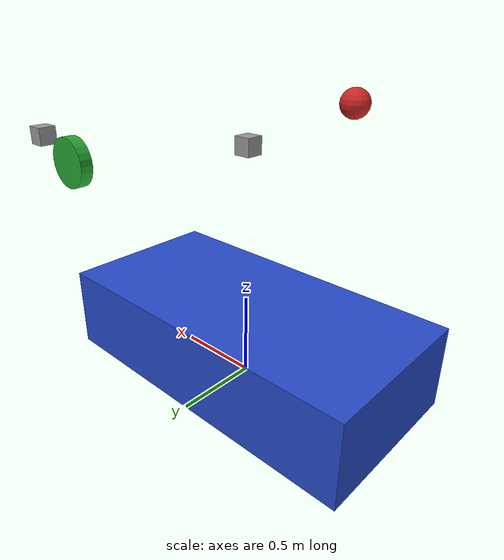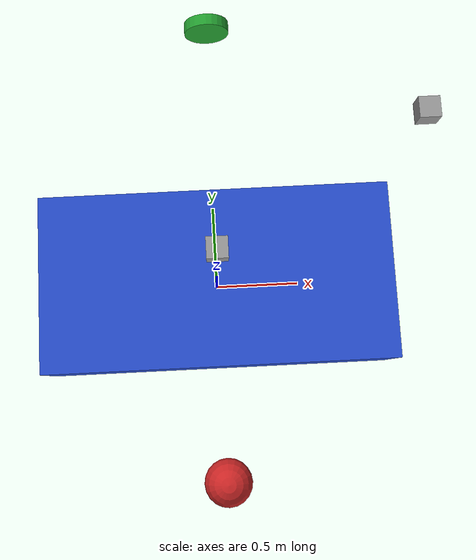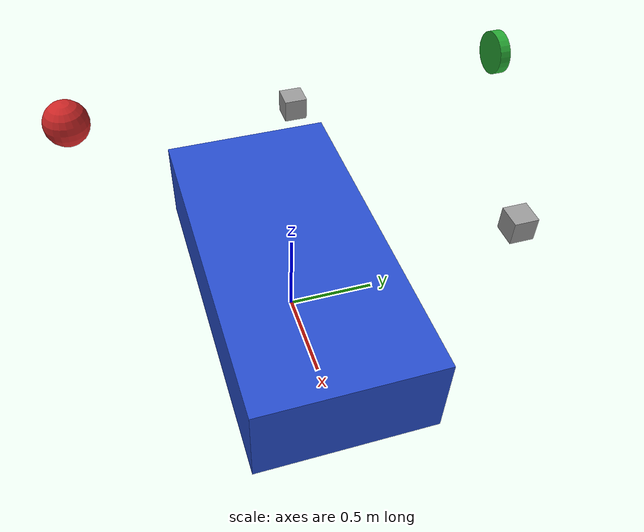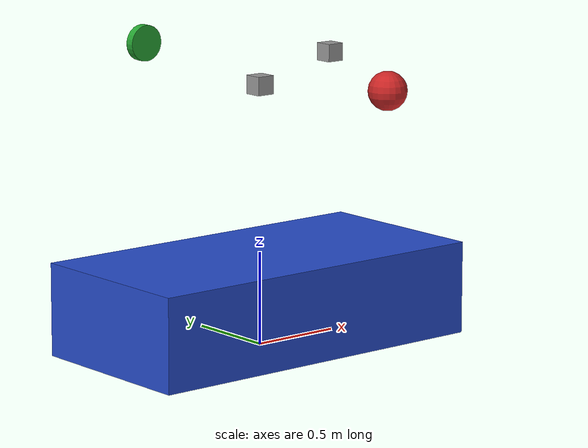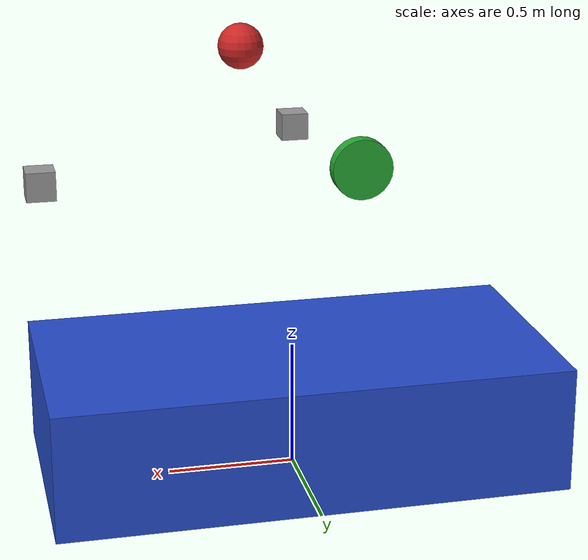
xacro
<?xml version="1.0"?>
<robot xmlns:xacro="http://www.ros.org/wiki/xacro" name="car_with_sensors">

  <!-- Base link -->
  <link name="base_link">
    <visual>
      <geometry>
        <box size="2 1 0.5"/>
      </geometry>
      <origin xyz="0 0 0.25" rpy="0 0 0"/>
      <material name="blue"/>
    </visual>
    <collision>
      <geometry>
        <box size="2 1 0.5"/>
      </geometry>
      <origin xyz="0 0 0.25" rpy="0 0 0"/>
    </collision>
    <inertial>
      <mass value="20.0"/>
      <origin xyz="0 0 0.25"/>
      <inertia ixx="1.0" ixy="0.0" ixz="0.0"
               iyy="1.0" iyz="0.0"
               izz="1.0"/>
    </inertial>
  </link>

  <!-- LIDAR -->
  <link name="lidar_link">
    <visual>
      <geometry>
        <cylinder radius="0.1" length="0.05"/>
      </geometry>
      <origin xyz="0 0.5 0.75" rpy="1.5708 0 0"/>
      <material name="green"/>
    </visual>
  </link>
  <joint name="lidar_joint" type="fixed">
    <parent link="base_link"/>
    <child link="lidar_link"/>
    <origin xyz="0 0.5 0.75" rpy="0 0 0"/>
  </joint>

  <!-- Radar -->
  <link name="radar_link">
    <visual>
      <geometry>
        <sphere radius="0.1"/>
      </geometry>
      <origin xyz="0 -0.5 0.75"/>
      <material name="red"/>
    </visual>
  </link>
  <joint name="radar_joint" type="fixed">
    <parent link="base_link"/>
    <child link="radar_link"/>
    <origin xyz="0 -0.5 0.75"/>
  </joint>

  <!-- Camera 1 (Front) -->
  <link name="camera1_link">
    <visual>
      <geometry>
        <box size="0.1 0.1 0.1"/>
      </geometry>
      <origin xyz="0.5 0.3 0.7"/>
      <material name="grey"/>
    </visual>
  </link>
  <joint name="camera1_joint" type="fixed">
    <parent link="base_link"/>
    <child link="camera1_link"/>
    <origin xyz="0.5 0.3 0.7" rpy="0 0 0"/>
  </joint>

  <!-- Camera 2 (Rear) -->
  <link name="camera2_link">
    <visual>
      <geometry>
        <box size="0.1 0.1 0.1"/>
      </geometry>
      <origin xyz="-0.5 -0.3 0.7"/>
      <material name="grey"/>
    </visual>
  </link>
  <joint name="camera2_joint" type="fixed">
    <parent link="base_link"/>
    <child link="camera2_link"/>
    <origin xyz="-0.5 -0.3 0.7" rpy="0 0 3.14"/>
  </joint>

</robot>
